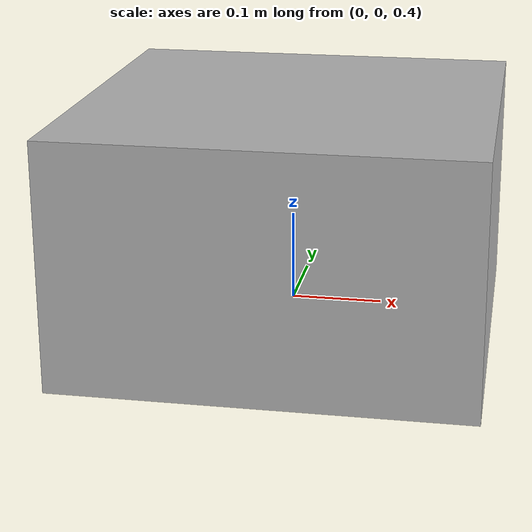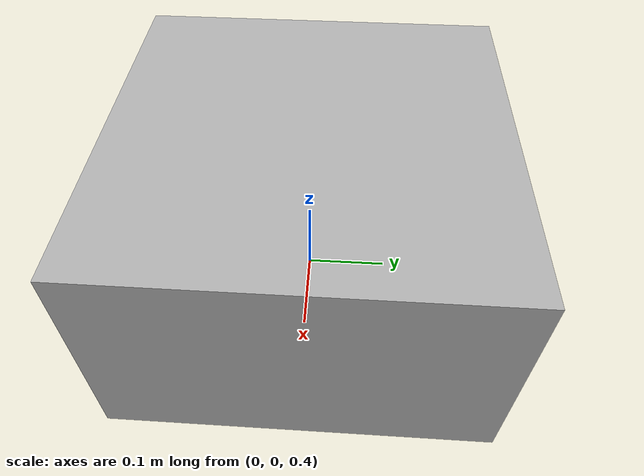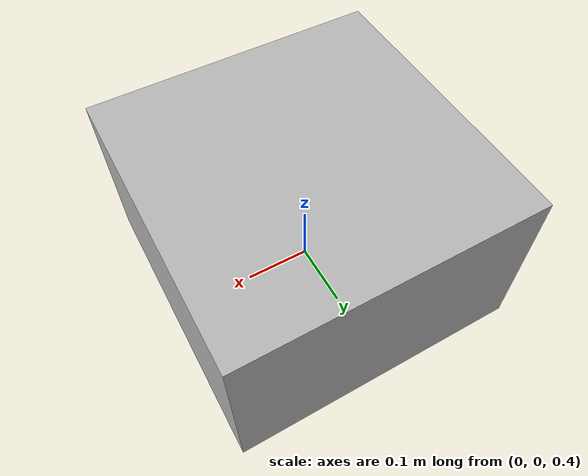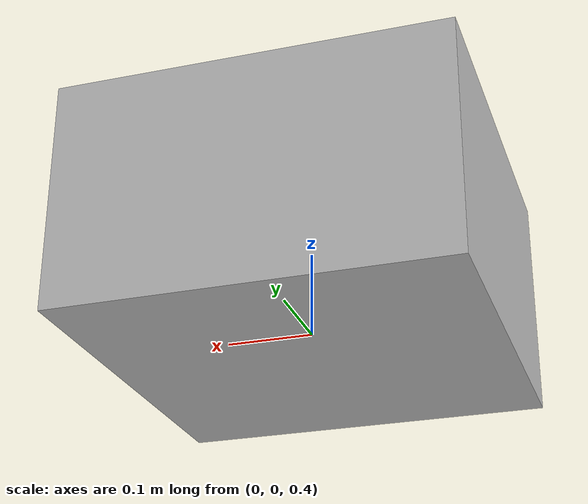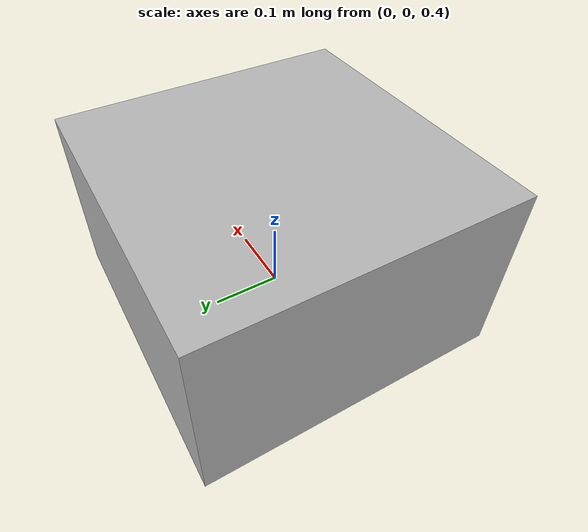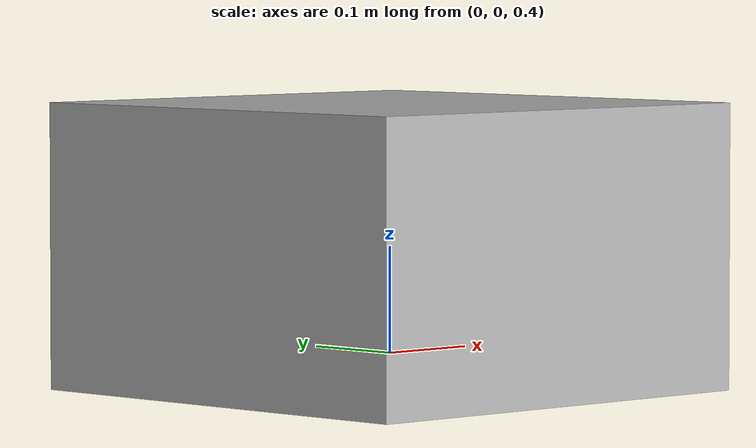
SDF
<?xml version="1.0"?>
<sdf version="1.5">
  <model name="octocopter">
    <pose>0 0 0.5 0 0 0</pose>
    <static>false</static>
    <link name="wholebody">
      <inertial>
        <mass>1.38</mass>
        <inertia>
          <ixx>0.114</ixx>
          <iyy>0.119</iyy>
          <izz>0.218</izz>
        </inertia>
      </inertial>
      <collision name="collision">
        <geometry>
          <box>
            <size>0.45 0.45 0.27</size>
          </box>
        </geometry>
        <surface>
          <friction>
            <ode>
              <mu>0</mu>
              <mu2>0</mu2>
            </ode>
          </friction>
        </surface>
      </collision>
      <visual name="visual">
        <geometry>
          <box>
            <size>0.45 0.45 0.27</size>
          </box>
        </geometry>
      </visual>
      <sensor name="octocopter-imu" type="imu">
        <always_on>1</always_on>
        <pose>0 0 0 0 0 0</pose>
        <imu>
          <angular_velocity>
            <x><noise type="none"></noise></x>
            <y><noise type="none"></noise></y>
            <z><noise type="none"></noise></z>
          </angular_velocity>
          <linear_acceleration>
            <x><noise type="none"></noise></x>
            <y><noise type="none"></noise></y>
            <z><noise type="none"></noise></z>
          </linear_acceleration>
        </imu>
      </sensor>
    </link>
    <plugin name="VelocitySensor" filename="libvelocity_sensor.so">
      <linkName>wholebody</linkName>
    </plugin>
  </model>
</sdf>
